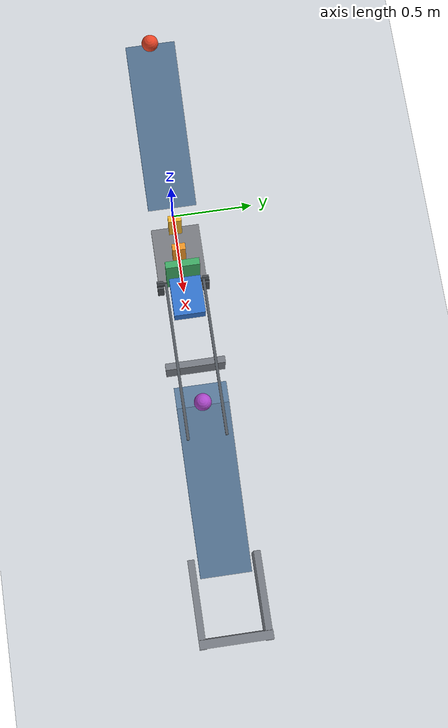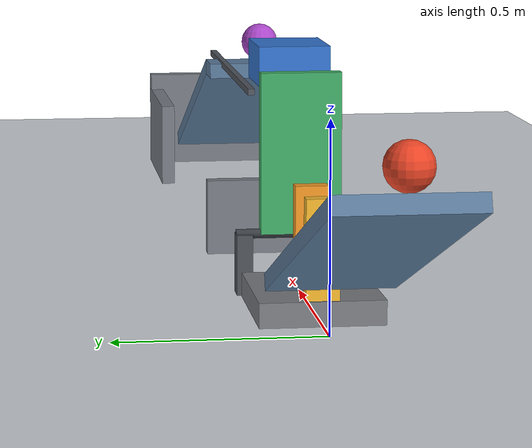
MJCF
<mujoco model="passive_domino_flap_cart_chain">
  <compiler angle="degree" autolimits="true" inertiafromgeom="true"/>
  <option timestep="0.002" gravity="0 0 -9.81" integrator="implicitfast" solver="Newton" iterations="80" tolerance="1e-10" cone="elliptic"/>
  <size njmax="2000" nconmax="400"/>
  <statistic center="0.8 0 0.25" extent="2.4"/>

  <visual>
    <headlight ambient="0.4 0.4 0.4" diffuse="0.7 0.7 0.7" specular="0.2 0.2 0.2"/>
    <rgba haze="0.85 0.90 0.95 1"/>
  </visual>

  <!-- Sliding friction is 0.70. Small torsional and rolling friction dissipate residual motion. -->
  <!-- solref damping ratio 0.6901 corresponds approximately to restitution 0.05. -->
  <worldbody>
    <light name="key_light" pos="0.5 -2 4" dir="0 0 -1" directional="true"/>
    <camera name="overview" pos="0.8 -4.6 2.6" xyaxes="1 0 0 0 0.46 0.89"/>

    <geom name="floor" type="plane" size="5 3 0.1" pos="0 0 0" friction="0.70 0.005 0.005" condim="6" solref="0.008 0.6901" solimp="0.95 0.99 0.001" rgba="0.83 0.85 0.87 1"/>

    <!-- One-metre inclined surface: high end (-0.939693, 0, 0.492020), low end (0, 0, 0.15). -->
    <body name="ramp1" pos="-0.476686713 0 0.302216219" euler="0 20 0">
      <geom name="ramp1_surface" type="box" size="0.50 0.15 0.02" friction="0.70 0.005 0.005" condim="6" solref="0.008 0.6901" solimp="0.95 0.99 0.001" rgba="0.36 0.49 0.62 1"/>
    </body>

    <body name="ball1" pos="-0.922591614 0 0.539004774">
      <freejoint name="ball1_free"/>
      <geom name="ball1_sphere" type="sphere" size="0.05" mass="0.20" friction="0.70 0.005 0.005" condim="6" solref="0.008 0.6901" solimp="0.95 0.99 0.001" rgba="0.92 0.27 0.15 1"/>
    </body>

    <!-- The first domino's approaching face is 0.10 m beyond the ramp's low end. -->
    <!-- A low plinth puts the incoming ball's impact near the domino's mid-height. -->
    <body name="domino_plinth" pos="0.27 0 0.03">
      <geom name="domino_plinth_top" type="box" size="0.175 0.15 0.03" friction="0.70 0.005 0.005" condim="6" solref="0.008 0.6901" solimp="0.95 0.99 0.001" rgba="0.48 0.49 0.51 1"/>
    </body>

    <body name="domino1" pos="0.12 0 0.18">
      <freejoint name="domino1_free"/>
      <geom name="domino1_box" type="box" size="0.02 0.04 0.12" mass="0.25" friction="0.70 0.005 0.005" condim="6" solref="0.008 0.6901" solimp="0.95 0.99 0.001" rgba="0.96 0.72 0.18 1"/>
    </body>

    <!-- Domino centres are 0.18 m apart. -->
    <body name="domino2" pos="0.30 0 0.18">
      <freejoint name="domino2_free"/>
      <geom name="domino2_box" type="box" size="0.02 0.04 0.12" mass="0.25" friction="0.70 0.005 0.005" condim="6" solref="0.008 0.6901" solimp="0.95 0.99 0.001" rgba="0.96 0.60 0.15 1"/>
    </body>

    <!-- The flap centreline is 0.18 m beyond domino2. Its lower half receives the falling domino. -->
    <!-- Positive rotation about +y is clockwise when viewed from negative y, with z upward. -->
    <body name="flap1" pos="0.48 0 0.15">
      <joint name="flap1_hinge" type="hinge" axis="0 1 0" damping="0.04" limited="true" range="0 65" solreflimit="0.004 1" solimplimit="0.99 0.999 0.0001"/>
      <geom name="flap1_panel" type="box" pos="0 0 0.20" size="0.02 0.10 0.20" mass="0.30" friction="0.70 0.005 0.005" condim="6" solref="0.008 0.6901" solimp="0.95 0.99 0.001" rgba="0.25 0.68 0.40 1"/>
    </body>

    <body name="flap_mount" pos="0.48 0 0">
      <geom name="flap_mount_left" type="box" pos="0 -0.14 0.075" size="0.025 0.02 0.075" contype="0" conaffinity="0" rgba="0.30 0.32 0.34 1"/>
      <geom name="flap_mount_right" type="box" pos="0 0.14 0.075" size="0.025 0.02 0.075" contype="0" conaffinity="0" rgba="0.30 0.32 0.34 1"/>
      <geom name="flap_mount_axle" type="cylinder" pos="0 0 0.15" euler="90 0 0" size="0.012 0.16" contype="0" conaffinity="0" rgba="0.22 0.24 0.26 1"/>
    </body>

    <!-- The ideal horizontal slide supports the cart without floor rubbing. -->
    <!-- Initial cart front x=0.80; ball2's near side x=1.25, giving 0.45 m travel to contact. -->
    <body name="cart1" pos="0.69 0 0.552020143">
      <joint name="cart1_slide" type="slide" axis="1 0 0" damping="0.20" limited="true" range="0 0.70" solreflimit="0.004 1" solimplimit="0.99 0.999 0.0001"/>
      <geom name="cart1_box" type="box" size="0.11 0.09 0.05" mass="0.50" friction="0.70 0.005 0.005" condim="6" solref="0.008 0.6901" solimp="0.95 0.99 0.001" rgba="0.20 0.46 0.82 1"/>
    </body>

    <body name="cart_guide" pos="1.035 0 0.49">
      <geom name="cart_guide_left" type="box" pos="0 -0.11 0" size="0.46 0.008 0.008" contype="0" conaffinity="0" rgba="0.32 0.34 0.37 1"/>
      <geom name="cart_guide_right" type="box" pos="0 0.11 0" size="0.46 0.008 0.008" contype="0" conaffinity="0" rgba="0.32 0.34 0.37 1"/>
    </body>

    <!-- Ramp2 has the same length, width, inclination, and low-end elevation as ramp1. -->
    <!-- Its high endpoint is (1.31, 0, 0.492020); its low endpoint is (2.249693, 0, 0.15). -->
    <body name="ramp2" pos="1.773005907 0 0.302216219" euler="0 20 0">
      <geom name="ramp2_surface" type="box" size="0.50 0.15 0.02" friction="0.70 0.005 0.005" condim="6" solref="0.008 0.6901" solimp="0.95 0.99 0.001" rgba="0.36 0.49 0.62 1"/>
    </body>

    <!-- The ball is supported 0.01 m upstream of the inclined surface, avoiding premature release. -->
    <body name="ball2_perch" pos="1.25 0 0.472020143">
      <geom name="ball2_perch_top" type="box" size="0.06 0.15 0.02" friction="0.70 0.005 0.005" condim="6" solref="0.008 0.6901" solimp="0.95 0.99 0.001" rgba="0.36 0.49 0.62 1"/>
    </body>

    <body name="ball2" pos="1.30 0 0.542020143">
      <freejoint name="ball2_free"/>
      <geom name="ball2_sphere" type="sphere" size="0.05" mass="0.20" friction="0.70 0.005 0.005" condim="6" solref="0.008 0.6901" solimp="0.95 0.99 0.001" rgba="0.68 0.28 0.80 1"/>
    </body>

    <!-- Passive catch walls limit residual ball travel after the intended interactions. -->
    <body name="ball1_catch" pos="1.00 0 0.10">
      <geom name="ball1_catch_end" type="box" size="0.02 0.18 0.10" friction="0.70 0.005 0.005" condim="6" solref="0.008 0.6901" solimp="0.95 0.99 0.001" rgba="0.47 0.49 0.52 1"/>
    </body>

    <body name="ball2_catch" pos="2.39 0 0">
      <geom name="ball2_catch_end" type="box" pos="0.22 0 0.15" size="0.025 0.21 0.15" friction="0.70 0.005 0.005" condim="6" solref="0.008 0.6901" solimp="0.95 0.99 0.001" rgba="0.47 0.49 0.52 1"/>
      <geom name="ball2_catch_left" type="box" pos="0 -0.19 0.125" size="0.25 0.02 0.125" friction="0.70 0.005 0.005" condim="6" solref="0.008 0.6901" solimp="0.95 0.99 0.001" rgba="0.47 0.49 0.52 1"/>
      <geom name="ball2_catch_right" type="box" pos="0 0.19 0.125" size="0.25 0.02 0.125" friction="0.70 0.005 0.005" condim="6" solref="0.008 0.6901" solimp="0.95 0.99 0.001" rgba="0.47 0.49 0.52 1"/>
    </body>
  </worldbody>

  <!-- Omitted keyframe positions default to qpos0; omitted velocities default to zero. -->
  <keyframe>
    <key name="start" time="0"/>
  </keyframe>
</mujoco>
